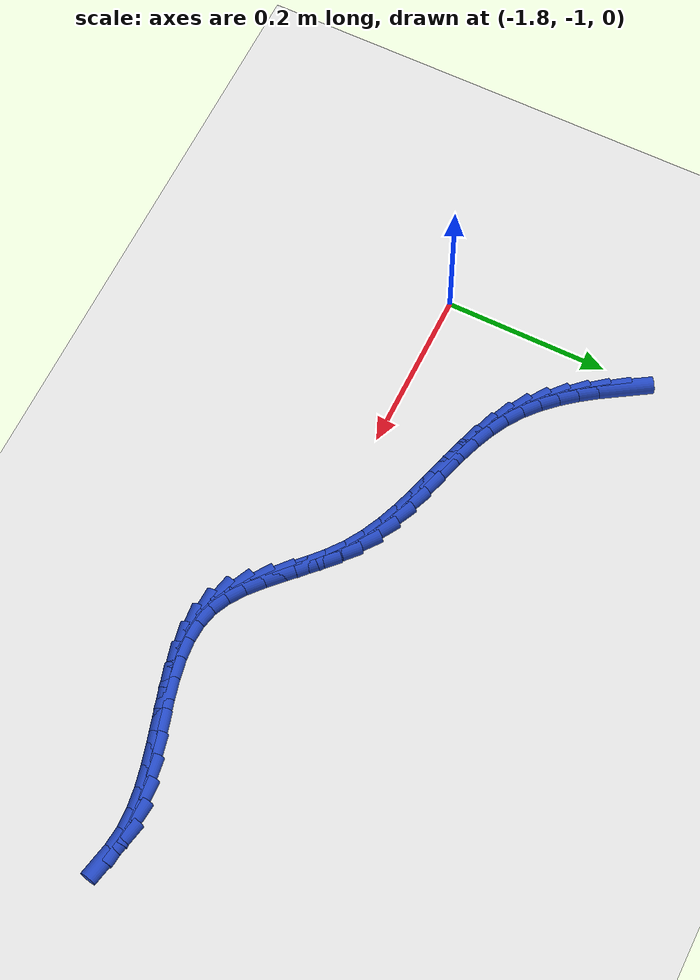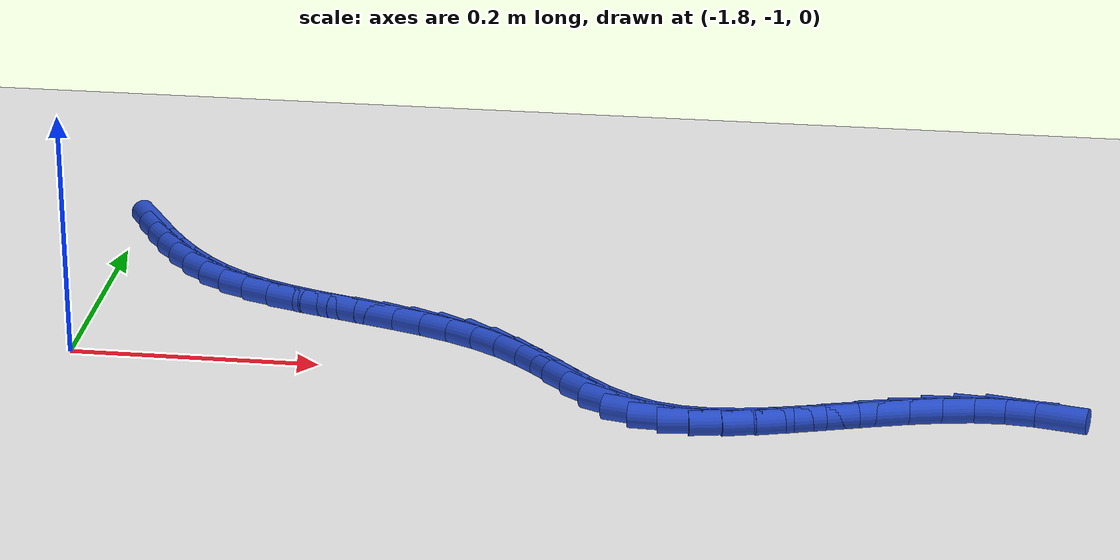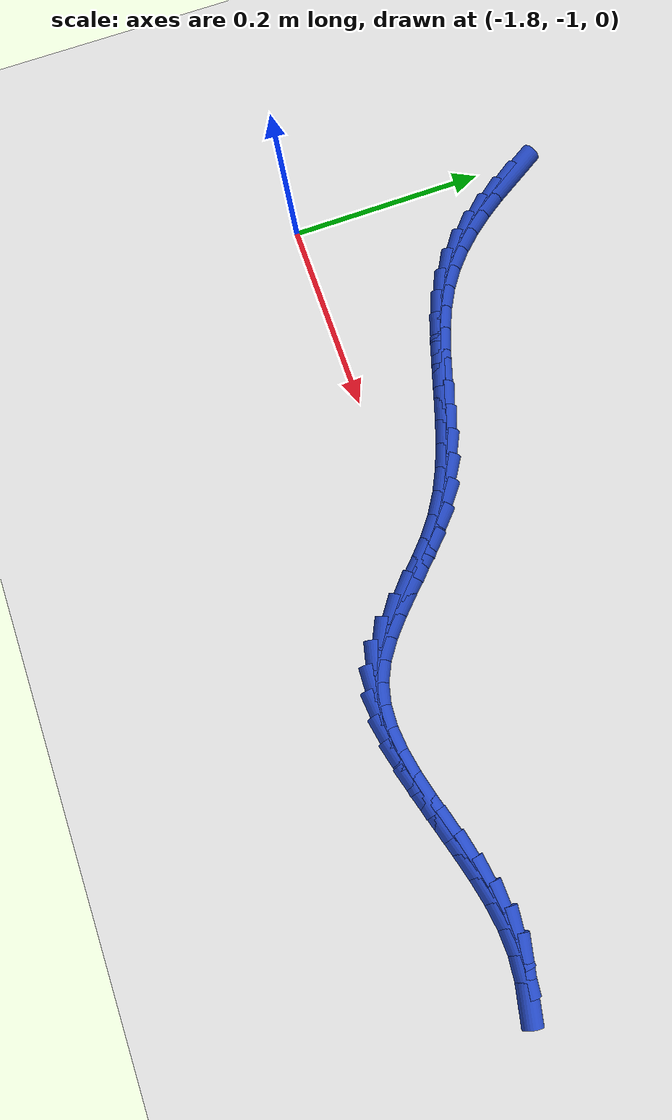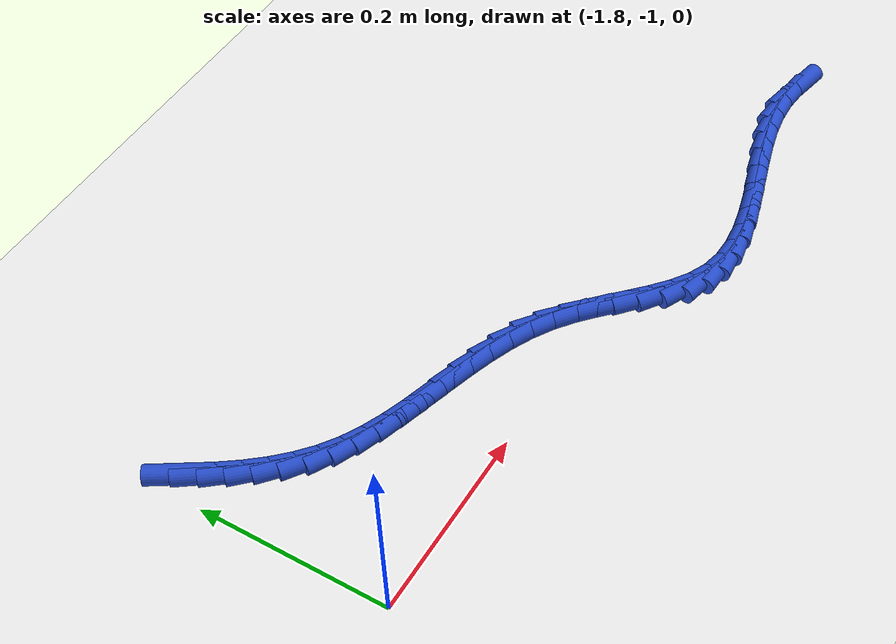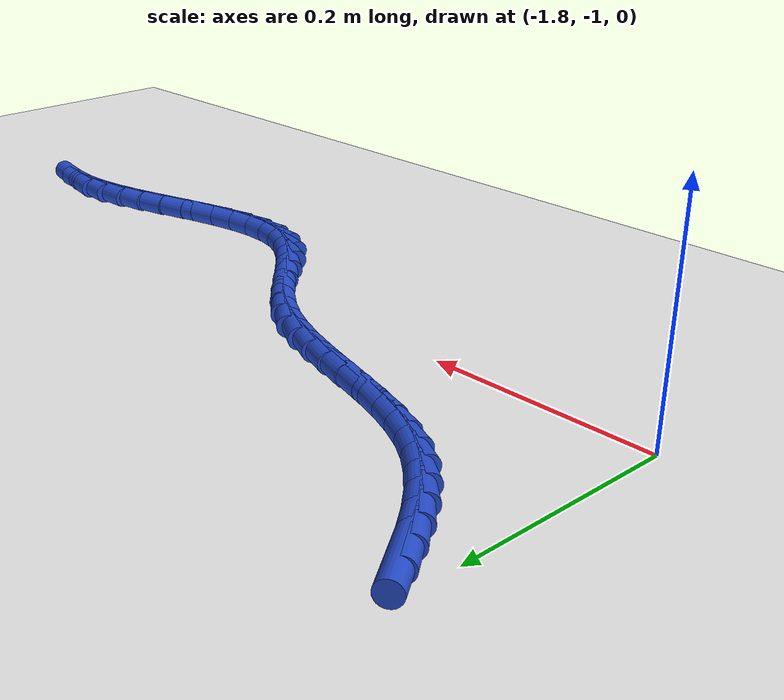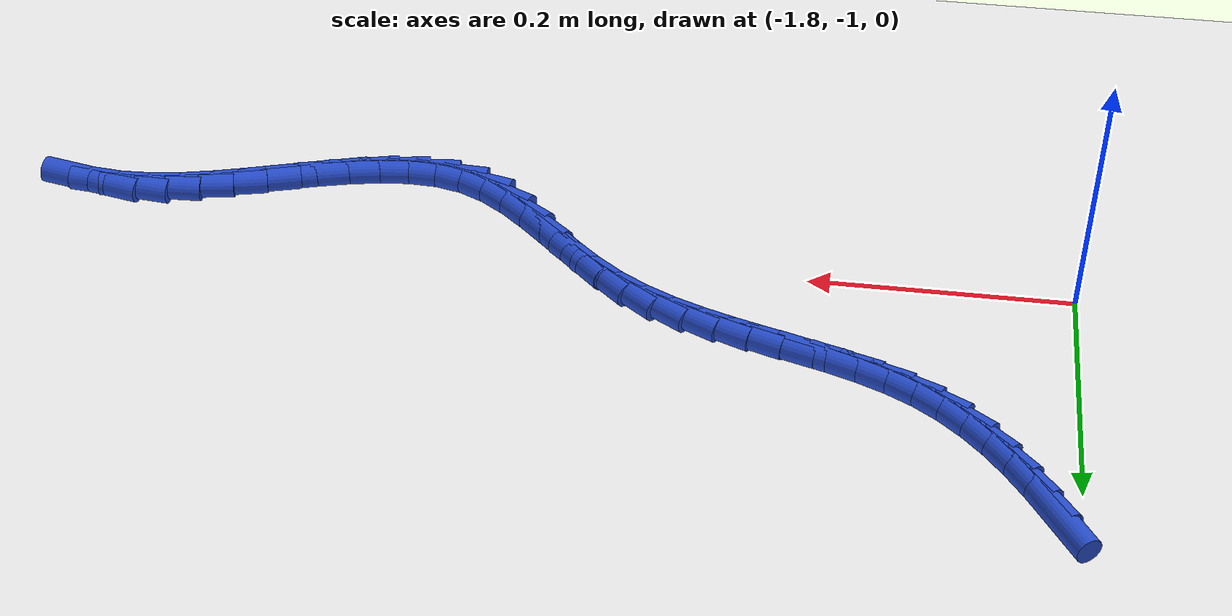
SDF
<sdf version="1.6">
 <world name="default">
  <model name="ground_plane">
   <static>1</static>
   <link name="link">
    <collision name="collision">
     <geometry><plane><normal>0 0 1</normal><size>100 100</size></plane></geometry>
     <surface><friction><ode><mu>100</mu><mu2>50</mu2></ode></friction></surface>
    </collision>
    <visual name="visual">
     <cast_shadows>0</cast_shadows>
     <geometry><plane><normal>0 0 1</normal><size>100 100</size></plane></geometry>
     <material>
      <script><uri>file://media/materials/scripts/gazebo.material</uri><name>Gazebo/WhiteGlow</name></script>
     </material>
    </visual>
   </link>
  </model>
  <model name="line">
   <link name="link_176">
    <pose>-1.7796594619735238 -0.7723773602858441 0.01 0 1.57 -1.0096432574573195</pose>
    <collision name="collision">
     <geometry><cylinder><radius>0.01</radius><length>0.08</length></cylinder></geometry>
    </collision>
    <visual name="visual">
     <material>
      <script><name>Gazebo/Blue</name><uri>file://media/materials/scripts/gazebo.material</uri></script>
     </material>
     <geometry><cylinder><radius>0.01</radius><length>0.08</length></cylinder></geometry>
    </visual>
   </link>
   <link name="link_177">
    <pose>-1.766462994363843 -0.79337222252843 0.01 0 1.57 -0.9563001779422715</pose>
    <collision name="collision">
     <geometry><cylinder><radius>0.01</radius><length>0.08</length></cylinder></geometry>
    </collision>
    <visual name="visual">
     <material>
      <script><name>Gazebo/Blue</name><uri>file://media/materials/scripts/gazebo.material</uri></script>
     </material>
     <geometry><cylinder><radius>0.01</radius><length>0.08</length></cylinder></geometry>
    </visual>
   </link>
   <link name="link_178">
    <pose>-1.752432961966964 -0.8132551404298379 0.01 0 1.57 -0.8899248020366698</pose>
    <collision name="collision">
     <geometry><cylinder><radius>0.01</radius><length>0.08</length></cylinder></geometry>
    </collision>
    <visual name="visual">
     <material>
      <script><name>Gazebo/Blue</name><uri>file://media/materials/scripts/gazebo.material</uri></script>
     </material>
     <geometry><cylinder><radius>0.01</radius><length>0.08</length></cylinder></geometry>
    </visual>
   </link>
   <link name="link_179">
    <pose>-1.7374154343357118 -0.8317929215963088 0.01 0 1.57 -0.8095642692179674</pose>
    <collision name="collision">
     <geometry><cylinder><radius>0.01</radius><length>0.08</length></cylinder></geometry>
    </collision>
    <visual name="visual">
     <material>
      <script><name>Gazebo/Blue</name><uri>file://media/materials/scripts/gazebo.material</uri></script>
     </material>
     <geometry><cylinder><radius>0.01</radius><length>0.08</length></cylinder></geometry>
    </visual>
   </link>
   <link name="link_180">
    <pose>-1.7212564810229112 -0.848752373634083 0.01 0 1.57 -0.7147728638567483</pose>
    <collision name="collision">
     <geometry><cylinder><radius>0.01</radius><length>0.08</length></cylinder></geometry>
    </collision>
    <visual name="visual">
     <material>
      <script><name>Gazebo/Blue</name><uri>file://media/materials/scripts/gazebo.material</uri></script>
     </material>
     <geometry><cylinder><radius>0.01</radius><length>0.08</length></cylinder></geometry>
    </visual>
   </link>
   <link name="link_181">
    <pose>-1.7038021715813887 -0.8639003041494029 0.01 0 1.57 -0.6061223451139025</pose>
    <collision name="collision">
     <geometry><cylinder><radius>0.01</radius><length>0.08</length></cylinder></geometry>
    </collision>
    <visual name="visual">
     <material>
      <script><name>Gazebo/Blue</name><uri>file://media/materials/scripts/gazebo.material</uri></script>
     </material>
     <geometry><cylinder><radius>0.01</radius><length>0.08</length></cylinder></geometry>
    </visual>
   </link>
   <link name="link_182">
    <pose>-1.6848985968493906 -0.8770035550229 0.01 0 1.57 -0.49311454293882695</pose>
    <collision name="collision">
     <geometry><cylinder><radius>0.01</radius><length>0.08</length></cylinder></geometry>
    </collision>
    <visual name="visual">
     <material>
      <script><name>Gazebo/Blue</name><uri>file://media/materials/scripts/gazebo.material</uri></script>
     </material>
     <geometry><cylinder><radius>0.01</radius><length>0.08</length></cylinder></geometry>
    </visual>
   </link>
   <link name="link_183">
    <pose>-1.6644825622075399 -0.8879750392743334 0.01 0 1.57 -0.4023801739228338</pose>
    <collision name="collision">
     <geometry><cylinder><radius>0.01</radius><length>0.08</length></cylinder></geometry>
    </collision>
    <visual name="visual">
     <material>
      <script><name>Gazebo/Blue</name><uri>file://media/materials/scripts/gazebo.material</uri></script>
     </material>
     <geometry><cylinder><radius>0.01</radius><length>0.08</length></cylinder></geometry>
    </visual>
   </link>
   <link name="link_184">
    <pose>-1.6427890656066986 -0.8972078280907575 0.01 0 1.57 -0.33861849840766467</pose>
    <collision name="collision">
     <geometry><cylinder><radius>0.01</radius><length>0.08</length></cylinder></geometry>
    </collision>
    <visual name="visual">
     <material>
      <script><name>Gazebo/Blue</name><uri>file://media/materials/scripts/gazebo.material</uri></script>
     </material>
     <geometry><cylinder><radius>0.01</radius><length>0.08</length></cylinder></geometry>
    </visual>
   </link>
   <link name="link_185">
    <pose>-1.6201142849889438 -0.9051935064231093 0.01 0 1.57 -0.30015990736147236</pose>
    <collision name="collision">
     <geometry><cylinder><radius>0.01</radius><length>0.08</length></cylinder></geometry>
    </collision>
    <visual name="visual">
     <material>
      <script><name>Gazebo/Blue</name><uri>file://media/materials/scripts/gazebo.material</uri></script>
     </material>
     <geometry><cylinder><radius>0.01</radius><length>0.08</length></cylinder></geometry>
    </visual>
   </link>
   <link name="link_186">
    <pose>-1.5967543982963535 -0.9124236592223267 0.01 0 1.57 -0.2853252794627698</pose>
    <collision name="collision">
     <geometry><cylinder><radius>0.01</radius><length>0.08</length></cylinder></geometry>
    </collision>
    <visual name="visual">
     <material>
      <script><name>Gazebo/Blue</name><uri>file://media/materials/scripts/gazebo.material</uri></script>
     </material>
     <geometry><cylinder><radius>0.01</radius><length>0.08</length></cylinder></geometry>
    </visual>
   </link>
   <link name="link_187">
    <pose>-1.573005583471004 -0.919389871439347 0.01 0 1.57 -0.29304862095995127</pose>
    <collision name="collision">
     <geometry><cylinder><radius>0.01</radius><length>0.08</length></cylinder></geometry>
    </collision>
    <visual name="visual">
     <material>
      <script><name>Gazebo/Blue</name><uri>file://media/materials/scripts/gazebo.material</uri></script>
     </material>
     <geometry><cylinder><radius>0.01</radius><length>0.08</length></cylinder></geometry>
    </visual>
   </link>
   <link name="link_188">
    <pose>-1.5491640184549715 -0.9265837280251071 0.01 0 1.57 -0.3230333605133028</pose>
    <collision name="collision">
     <geometry><cylinder><radius>0.01</radius><length>0.08</length></cylinder></geometry>
    </collision>
    <visual name="visual">
     <material>
      <script><name>Gazebo/Blue</name><uri>file://media/materials/scripts/gazebo.material</uri></script>
     </material>
     <geometry><cylinder><radius>0.01</radius><length>0.08</length></cylinder></geometry>
    </visual>
   </link>
   <link name="link_189">
    <pose>-1.5255258811903352 -0.9344968139305451 0.01 0 1.57 -0.3755970540585196</pose>
    <collision name="collision">
     <geometry><cylinder><radius>0.01</radius><length>0.08</length></cylinder></geometry>
    </collision>
    <visual name="visual">
     <material>
      <script><name>Gazebo/Blue</name><uri>file://media/materials/scripts/gazebo.material</uri></script>
     </material>
     <geometry><cylinder><radius>0.01</radius><length>0.08</length></cylinder></geometry>
    </visual>
   </link>
   <link name="link_190">
    <pose>-1.5023873496191693 -0.9436207141065981 0.01 0 1.57 -0.45121577208429847</pose>
    <collision name="collision">
     <geometry><cylinder><radius>0.01</radius><length>0.08</length></cylinder></geometry>
    </collision>
    <visual name="visual">
     <material>
      <script><name>Gazebo/Blue</name><uri>file://media/materials/scripts/gazebo.material</uri></script>
     </material>
     <geometry><cylinder><radius>0.01</radius><length>0.08</length></cylinder></geometry>
    </visual>
   </link>
   <link name="link_191">
    <pose>-1.4800446016835536 -0.9544470135042034 0.01 0 1.57 -0.5497029330924504</pose>
    <collision name="collision">
     <geometry><cylinder><radius>0.01</radius><length>0.08</length></cylinder></geometry>
    </collision>
    <visual name="visual">
     <material>
      <script><name>Gazebo/Blue</name><uri>file://media/materials/scripts/gazebo.material</uri></script>
     </material>
     <geometry><cylinder><radius>0.01</radius><length>0.08</length></cylinder></geometry>
    </visual>
   </link>
   <link name="link_192">
    <pose>-1.458793815325564 -0.9674672970742981 0.01 0 1.57 -0.6616402455755945</pose>
    <collision name="collision">
     <geometry><cylinder><radius>0.01</radius><length>0.08</length></cylinder></geometry>
    </collision>
    <visual name="visual">
     <material>
      <script><name>Gazebo/Blue</name><uri>file://media/materials/scripts/gazebo.material</uri></script>
     </material>
     <geometry><cylinder><radius>0.01</radius><length>0.08</length></cylinder></geometry>
    </visual>
   </link>
   <link name="link_193">
    <pose>-1.43885242310722 -0.9829963869438646 0.01 0 1.57 -0.7418550941482596</pose>
    <collision name="collision">
     <geometry><cylinder><radius>0.01</radius><length>0.08</length></cylinder></geometry>
    </collision>
    <visual name="visual">
     <material>
      <script><name>Gazebo/Blue</name><uri>file://media/materials/scripts/gazebo.material</uri></script>
     </material>
     <geometry><cylinder><radius>0.01</radius><length>0.08</length></cylinder></geometry>
    </visual>
   </link>
   <link name="link_194">
    <pose>-1.419971007533761 -1.00030114872052 0.01 0 1.57 -0.7776732869925118</pose>
    <collision name="collision">
     <geometry><cylinder><radius>0.01</radius><length>0.08</length></cylinder></geometry>
    </collision>
    <visual name="visual">
     <material>
      <script><name>Gazebo/Blue</name><uri>file://media/materials/scripts/gazebo.material</uri></script>
     </material>
     <geometry><cylinder><radius>0.01</radius><length>0.08</length></cylinder></geometry>
    </visual>
   </link>
   <link name="link_195">
    <pose>-1.4017287579218223 -1.0182637150408493 0.01 0 1.57 -0.7706990020563869</pose>
    <collision name="collision">
     <geometry><cylinder><radius>0.01</radius><length>0.08</length></cylinder></geometry>
    </collision>
    <visual name="visual">
     <material>
      <script><name>Gazebo/Blue</name><uri>file://media/materials/scripts/gazebo.material</uri></script>
     </material>
     <geometry><cylinder><radius>0.01</radius><length>0.08</length></cylinder></geometry>
    </visual>
   </link>
   <link name="link_196">
    <pose>-1.3837046015517578 -1.0357656303383835 0.01 0 1.57 -0.7180235481038715</pose>
    <collision name="collision">
     <geometry><cylinder><radius>0.01</radius><length>0.08</length></cylinder></geometry>
    </collision>
    <visual name="visual">
     <material>
      <script><name>Gazebo/Blue</name><uri>file://media/materials/scripts/gazebo.material</uri></script>
     </material>
     <geometry><cylinder><radius>0.01</radius><length>0.08</length></cylinder></geometry>
    </visual>
   </link>
   <link name="link_197">
    <pose>-1.3654774657039217 -1.0516884390466554 0.01 0 1.57 -0.6117724283676428</pose>
    <collision name="collision">
     <geometry><cylinder><radius>0.01</radius><length>0.08</length></cylinder></geometry>
    </collision>
    <visual name="visual">
     <material>
      <script><name>Gazebo/Blue</name><uri>file://media/materials/scripts/gazebo.material</uri></script>
     </material>
     <geometry><cylinder><radius>0.01</radius><length>0.08</length></cylinder></geometry>
    </visual>
   </link>
   <link name="link_198">
    <pose>-1.3466262776586684 -1.0649136855991963 0.01 0 1.57 -0.44180914327964255</pose>
    <collision name="collision">
     <geometry><cylinder><radius>0.01</radius><length>0.08</length></cylinder></geometry>
    </collision>
    <visual name="visual">
     <material>
      <script><name>Gazebo/Blue</name><uri>file://media/materials/scripts/gazebo.material</uri></script>
     </material>
     <geometry><cylinder><radius>0.01</radius><length>0.08</length></cylinder></geometry>
    </visual>
   </link>
   <link name="link_199">
    <pose>-1.326730416663946 -1.0743242791313858 0.01 0 1.57 -0.22984322362483336</pose>
    <collision name="collision">
     <geometry><cylinder><radius>0.01</radius><length>0.08</length></cylinder></geometry>
    </collision>
    <visual name="visual">
     <material>
      <script><name>Gazebo/Blue</name><uri>file://media/materials/scripts/gazebo.material</uri></script>
     </material>
     <geometry><cylinder><radius>0.01</radius><length>0.08</length></cylinder></geometry>
    </visual>
   </link>
   <link name="link_200">
    <pose>-1.305528843681392 -1.0792849807127063 0.01 0 1.57 -0.0475843352777196</pose>
    <collision name="collision">
     <geometry><cylinder><radius>0.01</radius><length>0.08</length></cylinder></geometry>
    </collision>
    <visual name="visual">
     <material>
      <script><name>Gazebo/Blue</name><uri>file://media/materials/scripts/gazebo.material</uri></script>
     </material>
     <geometry><cylinder><radius>0.01</radius><length>0.08</length></cylinder></geometry>
    </visual>
   </link>
   <link name="link_201">
    <pose>-1.2831545947918688 -1.0803504487636155 0.01 0 1.57 0.08945191688162989</pose>
    <collision name="collision">
     <geometry><cylinder><radius>0.01</radius><length>0.08</length></cylinder></geometry>
    </collision>
    <visual name="visual">
     <material>
      <script><name>Gazebo/Blue</name><uri>file://media/materials/scripts/gazebo.material</uri></script>
     </material>
     <geometry><cylinder><radius>0.01</radius><length>0.08</length></cylinder></geometry>
    </visual>
   </link>
   <link name="link_202">
    <pose>-1.2598004668115184 -1.0782557873534657 0.01 0 1.57 0.18507622181602273</pose>
    <collision name="collision">
     <geometry><cylinder><radius>0.01</radius><length>0.08</length></cylinder></geometry>
    </collision>
    <visual name="visual">
     <material>
      <script><name>Gazebo/Blue</name><uri>file://media/materials/scripts/gazebo.material</uri></script>
     </material>
     <geometry><cylinder><radius>0.01</radius><length>0.08</length></cylinder></geometry>
    </visual>
   </link>
   <link name="link_203">
    <pose>-1.2356592565564823 -1.0737361005516064 0.01 0 1.57 0.2459575998167477</pose>
    <collision name="collision">
     <geometry><cylinder><radius>0.01</radius><length>0.08</length></cylinder></geometry>
    </collision>
    <visual name="visual">
     <material>
      <script><name>Gazebo/Blue</name><uri>file://media/materials/scripts/gazebo.material</uri></script>
     </material>
     <geometry><cylinder><radius>0.01</radius><length>0.08</length></cylinder></geometry>
    </visual>
   </link>
   <link name="link_204">
    <pose>-1.2109237608429035 -1.067526492427389 0.01 0 1.57 0.2776533165058296</pose>
    <collision name="collision">
     <geometry><cylinder><radius>0.01</radius><length>0.08</length></cylinder></geometry>
    </collision>
    <visual name="visual">
     <material>
      <script><name>Gazebo/Blue</name><uri>file://media/materials/scripts/gazebo.material</uri></script>
     </material>
     <geometry><cylinder><radius>0.01</radius><length>0.08</length></cylinder></geometry>
    </visual>
   </link>
   <link name="link_205">
    <pose>-1.1857867764869237 -1.0603620670501643 0.01 0 1.57 0.28349045420382496</pose>
    <collision name="collision">
     <geometry><cylinder><radius>0.01</radius><length>0.08</length></cylinder></geometry>
    </collision>
    <visual name="visual">
     <material>
      <script><name>Gazebo/Blue</name><uri>file://media/materials/scripts/gazebo.material</uri></script>
     </material>
     <geometry><cylinder><radius>0.01</radius><length>0.08</length></cylinder></geometry>
    </visual>
   </link>
   <link name="link_206">
    <pose>-1.1604411003046848 -1.052977928489283 0.01 0 1.57 0.2644879715041795</pose>
    <collision name="collision">
     <geometry><cylinder><radius>0.01</radius><length>0.08</length></cylinder></geometry>
    </collision>
    <visual name="visual">
     <material>
      <script><name>Gazebo/Blue</name><uri>file://media/materials/scripts/gazebo.material</uri></script>
     </material>
     <geometry><cylinder><radius>0.01</radius><length>0.08</length></cylinder></geometry>
    </visual>
   </link>
   <link name="link_207">
    <pose>-1.1350795291123297 -1.0461091808140965 0.01 0 1.57 0.21948835263971736</pose>
    <collision name="collision">
     <geometry><cylinder><radius>0.01</radius><length>0.08</length></cylinder></geometry>
    </collision>
    <visual name="visual">
     <material>
      <script><name>Gazebo/Blue</name><uri>file://media/materials/scripts/gazebo.material</uri></script>
     </material>
     <geometry><cylinder><radius>0.01</radius><length>0.08</length></cylinder></geometry>
    </visual>
   </link>
   <link name="link_208">
    <pose>-1.1098948597259988 -1.0404909280939552 0.01 0 1.57 0.14535713966022976</pose>
    <collision name="collision">
     <geometry><cylinder><radius>0.01</radius><length>0.08</length></cylinder></geometry>
    </collision>
    <visual name="visual">
     <material>
      <script><name>Gazebo/Blue</name><uri>file://media/materials/scripts/gazebo.material</uri></script>
     </material>
     <geometry><cylinder><radius>0.01</radius><length>0.08</length></cylinder></geometry>
    </visual>
   </link>
   <link name="link_209">
    <pose>-1.085079888961836 -1.0368582743982098 0.01 0 1.57 0.03758466465930352</pose>
    <collision name="collision">
     <geometry><cylinder><radius>0.01</radius><length>0.08</length></cylinder></geometry>
    </collision>
    <visual name="visual">
     <material>
      <script><name>Gazebo/Blue</name><uri>file://media/materials/scripts/gazebo.material</uri></script>
     </material>
     <geometry><cylinder><radius>0.01</radius><length>0.08</length></cylinder></geometry>
    </visual>
   </link>
   <link name="link_210">
    <pose>-1.060827413635983 -1.0359463237962117 0.01 0 1.57 -0.09736772385650729</pose>
    <collision name="collision">
     <geometry><cylinder><radius>0.01</radius><length>0.08</length></cylinder></geometry>
    </collision>
    <visual name="visual">
     <material>
      <script><name>Gazebo/Blue</name><uri>file://media/materials/scripts/gazebo.material</uri></script>
     </material>
     <geometry><cylinder><radius>0.01</radius><length>0.08</length></cylinder></geometry>
    </visual>
   </link>
   <link name="link_211">
    <pose>-1.0372433355452888 -1.0382499361832092 0.01 0 1.57 -0.20893953534703316</pose>
    <collision name="collision">
     <geometry><cylinder><radius>0.01</radius><length>0.08</length></cylinder></geometry>
    </collision>
    <visual name="visual">
     <material>
      <script><name>Gazebo/Blue</name><uri>file://media/materials/scripts/gazebo.material</uri></script>
     </material>
     <geometry><cylinder><radius>0.01</radius><length>0.08</length></cylinder></geometry>
    </visual>
   </link>
  </model>
 </world>
</sdf>
